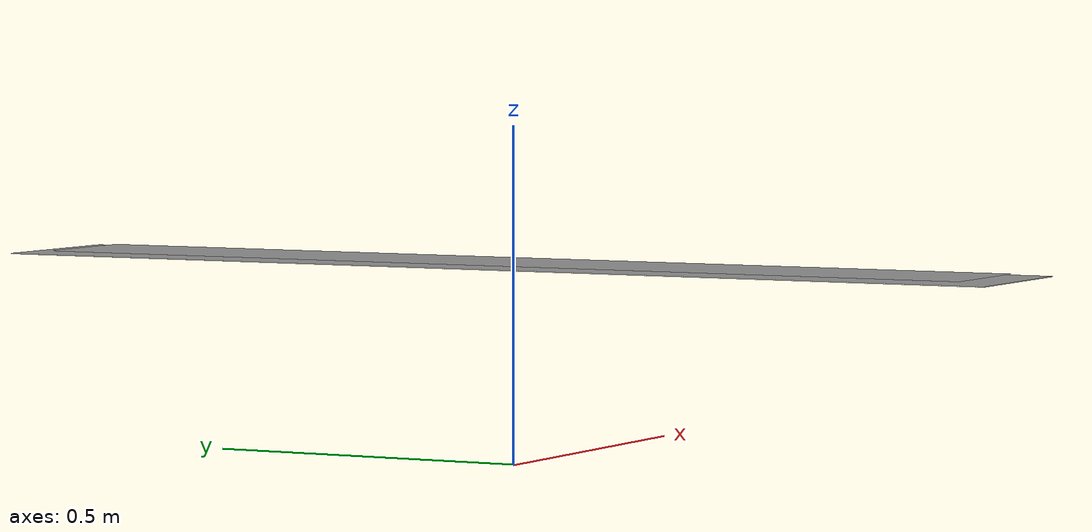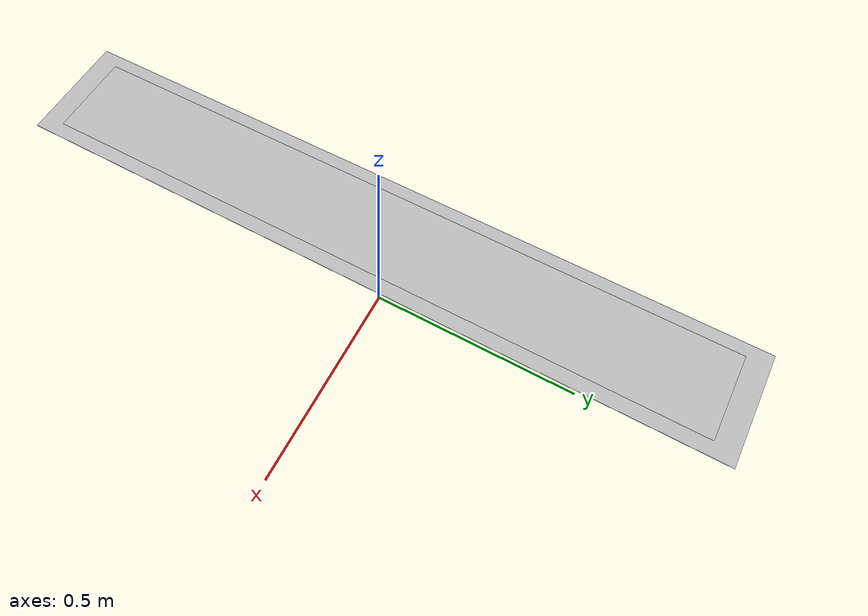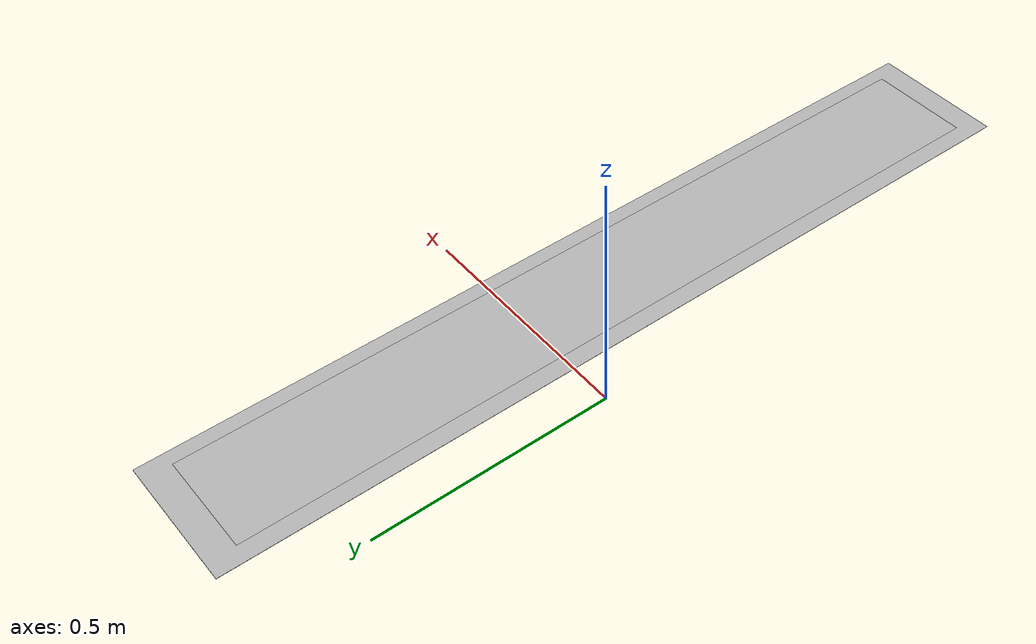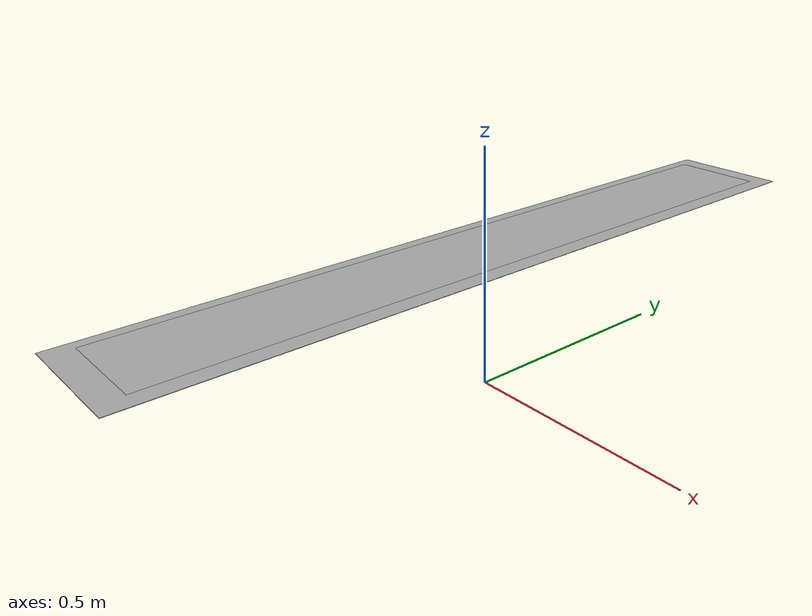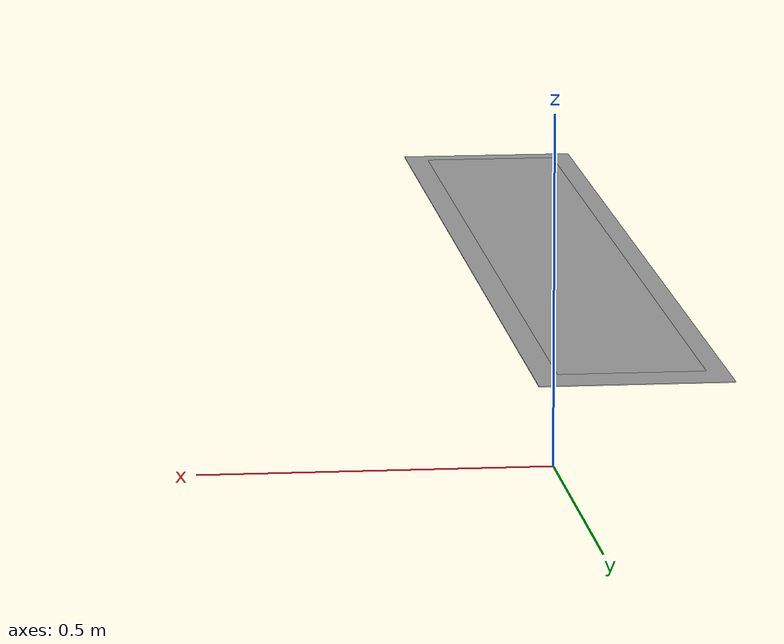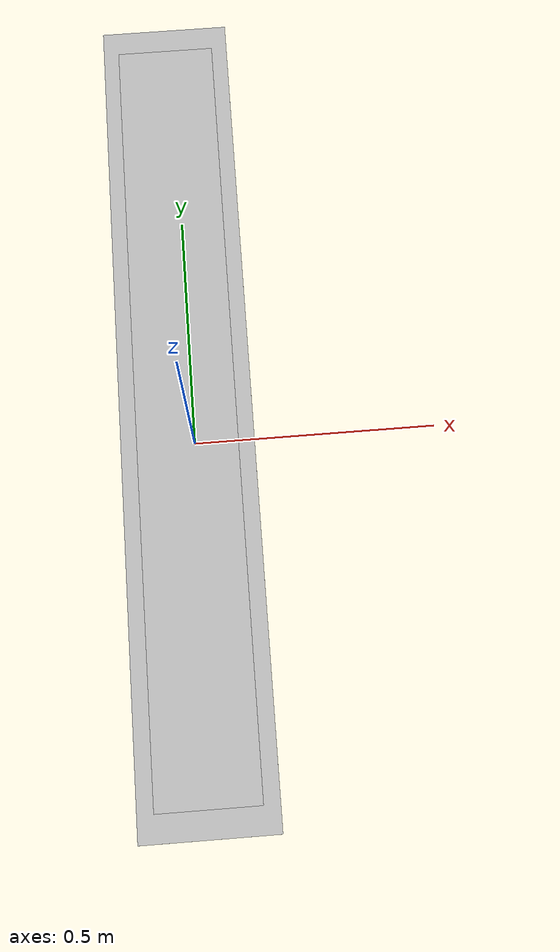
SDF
<?xml version="1.0" ?>
<sdf version="1.4">
  <model name="aruco_19cm">
    <static>true</static>
    <pose>0 0 0.3 0 0 0</pose>
    <link name="link">
      <visual name="visual">
        <geometry>
          <mesh>
            <uri>model://gazebo_config/aruco_19cm/meshes/aruco_marker.dae</uri>
          </mesh>
        </geometry>
      </visual>
      <visual name="visual_white_box">
        <pose>0 0 -0.004 0 0 0</pose>
        <geometry>
           <box>
              <size>0.25 1.6 0.001</size>
           </box>
        </geometry>
      </visual>
    </link>
  </model>
</sdf>
